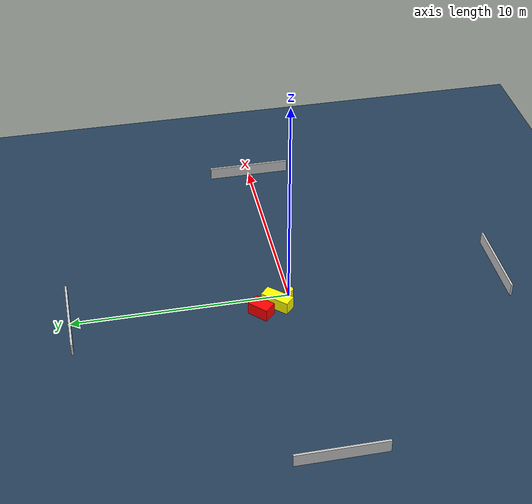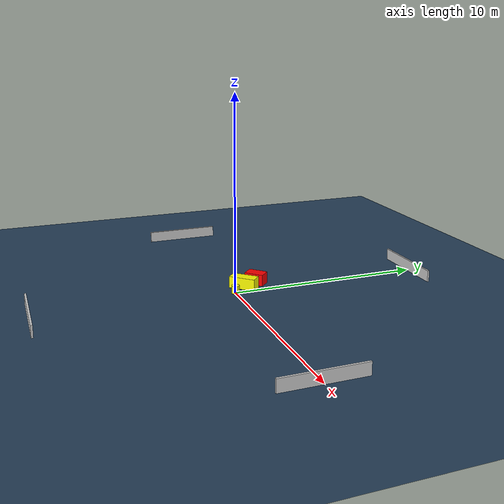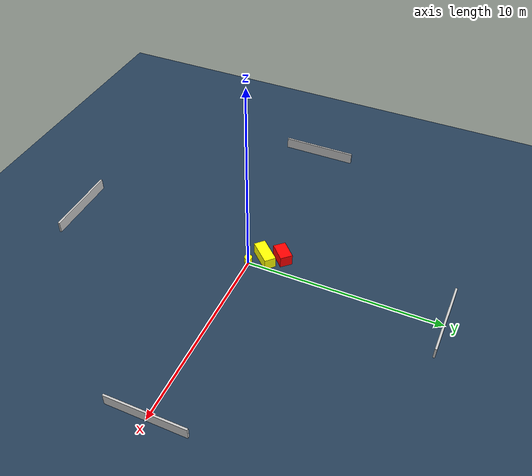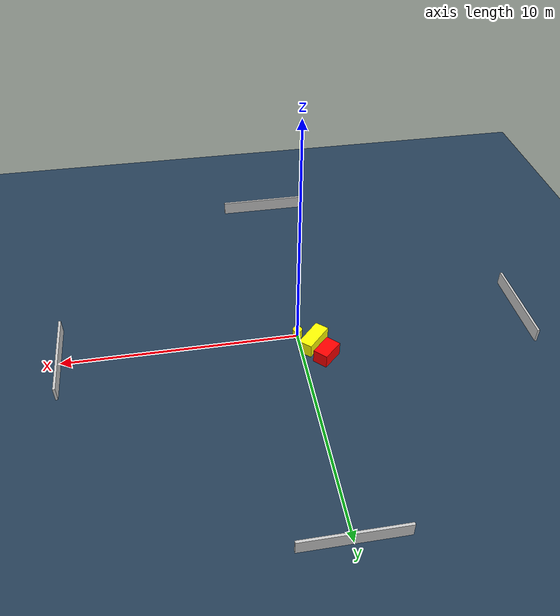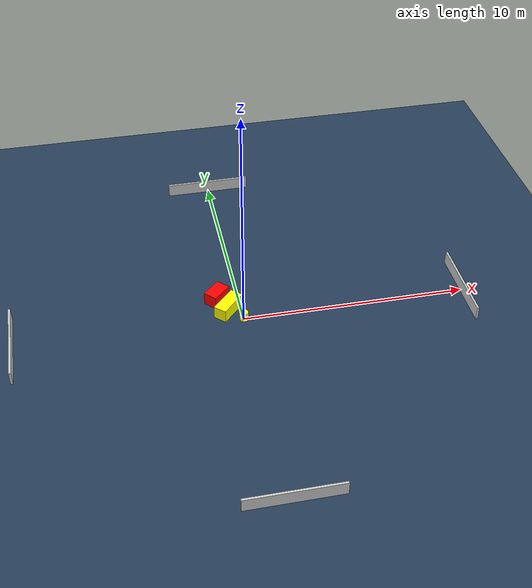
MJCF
<?xml version="1.0" ?>
<mujoco model="generated_environment">
  <option timestep="0.01" integrator="RK4" cone="elliptic"/>
  <default>
    <geom density="1"/>
  </default>
  <asset>
    <texture builtin="gradient" height="3072" name="skybox" rgb1="0.3 0.5 0.7" rgb2="0 0 0" type="skybox" width="512"/>
    <texture builtin="checker" height="300" name="groundplane" rgb1="0.2 0.3 0.4" rgb2="0.1 0.2 0.3" type="2d" width="300"/>
    <material name="groundplane" reflectance="0.2" texrepeat="5 5" texture="groundplane"/>
  </asset>
  <worldbody>
    <light dir="0 0 -1" directional="true" pos="0 0 1.5"/>
    <geom condim="3" friction="0.5 0.005 0.001" material="groundplane" name="floor" pos="0 0 0" size="0 0 0.05" type="plane"/>
    <body name="walls">
      <geom name="wall_1" condim="4" pos="-10.0 0.0 0.3" rgba="0.800000011920929 0.800000011920929 0.800000011920929 1.0" size="0.05 2.0 0.3" type="box"/>
      <geom name="wall_2" condim="4" pos="10.0 0.0 0.3" rgba="0.800000011920929 0.800000011920929 0.800000011920929 1.0" size="0.05 2.0 0.3" type="box"/>
      <geom name="wall_3" condim="4" pos="0.0 -10.0 0.3" rgba="0.800000011920929 0.800000011920929 0.800000011920929 1.0" size="2.0 0.05 0.3" type="box"/>
      <geom name="wall_4" condim="4" pos="0.0 10.0 0.3" rgba="0.800000011920929 0.800000011920929 0.800000011920929 1.0" size="2.0 0.05 0.3" type="box"/>
    </body>
    <body name="robot">
      <joint name="joint_x" type="slide" pos="0 0 0" axis="1 0 0"/>
      <joint name="joint_y" type="slide" pos="0 0 0" axis="0 1 0"/>
      <geom name="robot" type="cylinder" pos="0.0 0.0 0.2" size="0.2 0.2 0.0" mass="5.0" friction="1.0 0.005 0.0001" condim="4" rgba="1.0 1.0 0.0 1.0"/>
    </body>
    <body name="obstacle_1_movable">
      <geom name="obstacle_1_movable" condim="4" pos="-0.5669787960839243 0.6532092185451077 0.3" euler="0 0 316.98943101043534" friction="0.0 0.005 0.001" rgba="1.0 1.0 0.0 1.0" size="0.29827329023116156 0.6875861674237156 0.3" type="box" mass="0.1"/>
      <joint type="free"/>
    </body>
    <body name="obstacle_2_static">
      <geom name="obstacle_2_static" condim="4" pos="-0.9540486569330547 1.471299048235546 0.3" euler="0 0 44.162283418474" friction="0.0 0.005 0.001" rgba="1.0 0.0 0.0 1.0" size="0.5010424208329013 0.3201020456686449 0.3" type="box"/>
    </body>
  </worldbody>
  <actuator>
    <motor name="actuator_x" joint="joint_x" gear="1" ctrlrange="-1 1"/>
    <motor name="actuator_y" joint="joint_y" gear="1" ctrlrange="-1 1"/>
  </actuator>
</mujoco>
